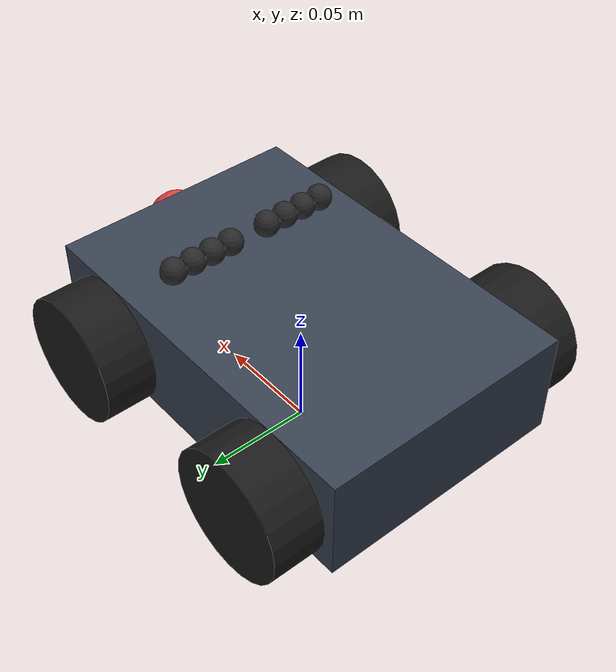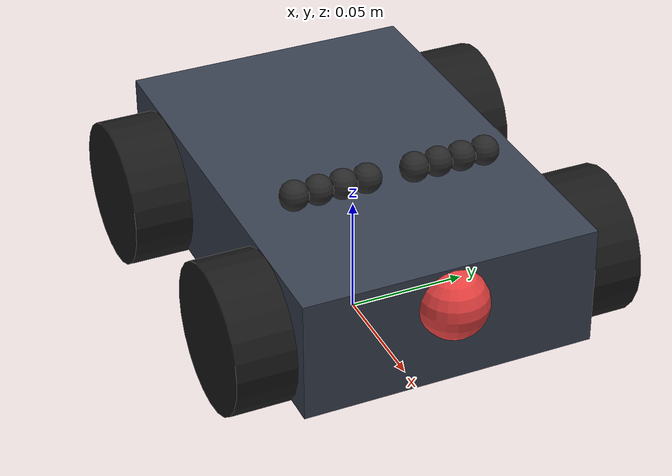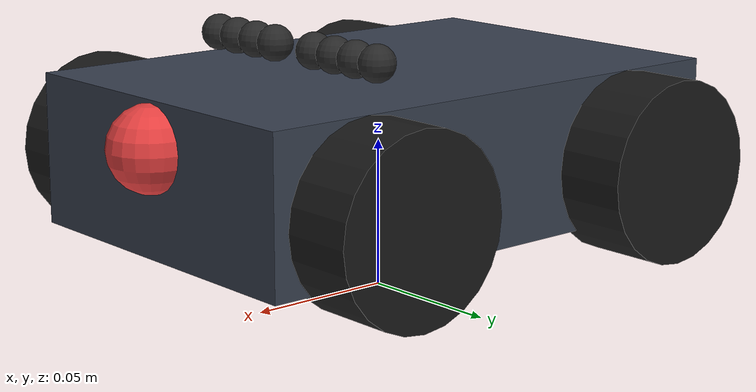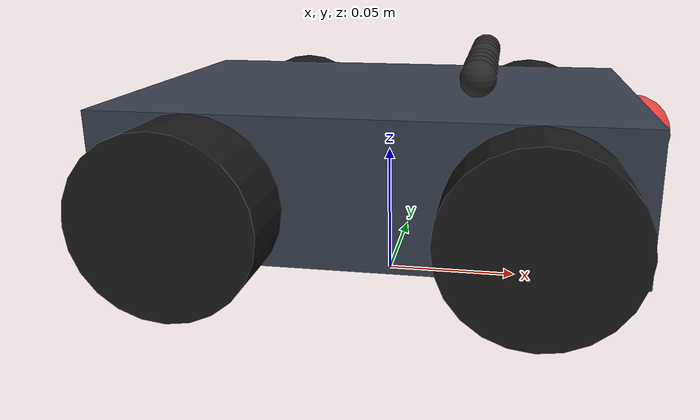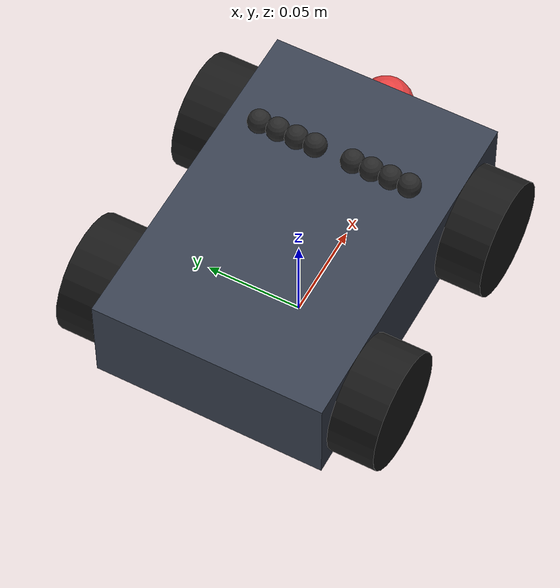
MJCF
<mujoco>
  <worldbody>
    <body name="car" pos="0.000 0.000 0.050">
          <joint name="car_x" type="slide" axis="1 0 0"/>
          <joint name="car_y" type="slide" axis="0 1 0"/>
          <joint name="car_yaw" type="hinge" axis="0 0 1"/>
          <geom name="chassis" type="box" size="0.090 0.060 0.025" rgba="0.220 0.250 0.310 1.000" contype="0" conaffinity="0"/>
          <site name="car_nose" pos="0.0900 0.0000 0.0100" size="0.0140" type="sphere" rgba="0.900 0.250 0.250 1.000"/>
          <site name="sensor_0" pos="0.0850 0.0400 -0.0150" size="0.0050" type="sphere" rgba="0.950 0.650 0.200 1.000"/>
    <site name="sensor_1" pos="0.0850 0.0300 -0.0150" size="0.0050" type="sphere" rgba="0.950 0.650 0.200 1.000"/>
    <site name="sensor_2" pos="0.0850 0.0200 -0.0150" size="0.0050" type="sphere" rgba="0.950 0.650 0.200 1.000"/>
    <site name="sensor_3" pos="0.0850 0.0100 -0.0150" size="0.0050" type="sphere" rgba="0.950 0.650 0.200 1.000"/>
    <site name="sensor_4" pos="0.0850 -0.0100 -0.0150" size="0.0050" type="sphere" rgba="0.950 0.650 0.200 1.000"/>
    <site name="sensor_5" pos="0.0850 -0.0200 -0.0150" size="0.0050" type="sphere" rgba="0.950 0.650 0.200 1.000"/>
    <site name="sensor_6" pos="0.0850 -0.0300 -0.0150" size="0.0050" type="sphere" rgba="0.950 0.650 0.200 1.000"/>
    <site name="sensor_7" pos="0.0850 -0.0400 -0.0150" size="0.0050" type="sphere" rgba="0.950 0.650 0.200 1.000"/>
          <site name="led_0" pos="0.0350 0.0400 0.0350" size="0.0060" type="sphere" rgba="0.160 0.160 0.160 1.000"/>
    <site name="led_1" pos="0.0350 0.0300 0.0350" size="0.0060" type="sphere" rgba="0.160 0.160 0.160 1.000"/>
    <site name="led_2" pos="0.0350 0.0200 0.0350" size="0.0060" type="sphere" rgba="0.160 0.160 0.160 1.000"/>
    <site name="led_3" pos="0.0350 0.0100 0.0350" size="0.0060" type="sphere" rgba="0.160 0.160 0.160 1.000"/>
    <site name="led_4" pos="0.0350 -0.0100 0.0350" size="0.0060" type="sphere" rgba="0.160 0.160 0.160 1.000"/>
    <site name="led_5" pos="0.0350 -0.0200 0.0350" size="0.0060" type="sphere" rgba="0.160 0.160 0.160 1.000"/>
    <site name="led_6" pos="0.0350 -0.0300 0.0350" size="0.0060" type="sphere" rgba="0.160 0.160 0.160 1.000"/>
    <site name="led_7" pos="0.0350 -0.0400 0.0350" size="0.0060" type="sphere" rgba="0.160 0.160 0.160 1.000"/>
          <body name="front_left_wheel" pos="0.055 0.070 -0.005">
            <joint name="front_left_steer" type="hinge" axis="0 0 1"/>
            <geom name="front_left_wheel_geom" type="cylinder" size="0.030 0.014" rgba="0.100 0.100 0.100 1.000" contype="0" conaffinity="0" euler="90 0 0"/>
          </body>
          <body name="front_right_wheel" pos="0.055 -0.070 -0.005">
            <joint name="front_right_steer" type="hinge" axis="0 0 1"/>
            <geom name="front_right_wheel_geom" type="cylinder" size="0.030 0.014" rgba="0.100 0.100 0.100 1.000" contype="0" conaffinity="0" euler="90 0 0"/>
          </body>
          <body name="rear_left_wheel" pos="-0.055 0.070 -0.005">
            <geom name="rear_left_wheel_geom" type="cylinder" size="0.030 0.014" rgba="0.100 0.100 0.100 1.000" contype="0" conaffinity="0" euler="90 0 0"/>
          </body>
          <body name="rear_right_wheel" pos="-0.055 -0.070 -0.005">
            <geom name="rear_right_wheel_geom" type="cylinder" size="0.030 0.014" rgba="0.100 0.100 0.100 1.000" contype="0" conaffinity="0" euler="90 0 0"/>
          </body>
        </body>
  </worldbody>
  <actuator>
    <velocity name="x_drive" joint="car_x" kv="120"/>
        <velocity name="y_drive" joint="car_y" kv="120"/>
        <velocity name="yaw_drive" joint="car_yaw" kv="45"/>
  </actuator>
</mujoco>
